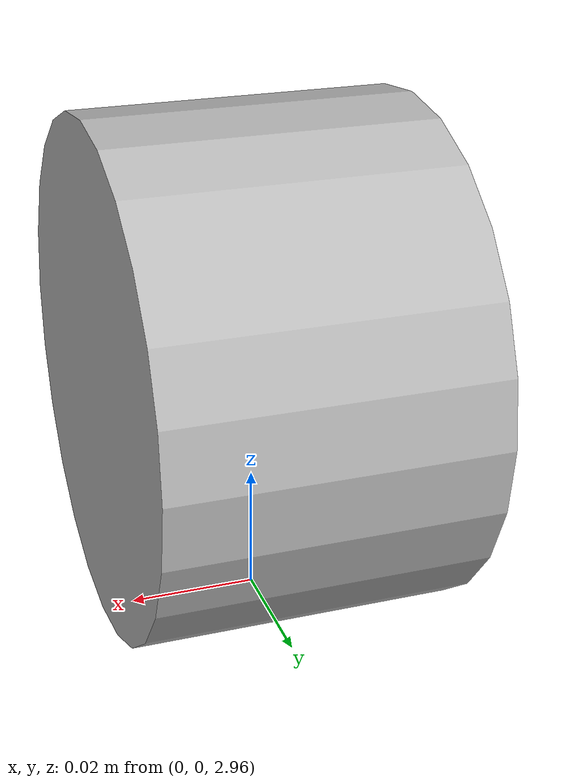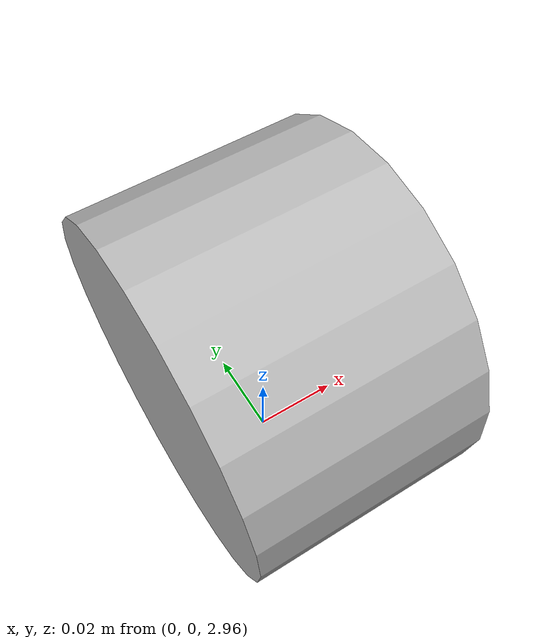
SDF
<?xml version="1.0" ?>
<sdf version="1.5">
  <world name="default">

    <!-- A global light source -->
    <include>
      <uri>model://sun</uri>
    </include>

    <!-- A ground plane -->
    <include>
      <uri>model://ground_plane</uri>
    </include>

    <include>
      <uri>model://realsense_d435</uri>
      <pose>0 0 3 0 1.57 0</pose>
      <static>true</static>
    </include>

  </world>
</sdf>

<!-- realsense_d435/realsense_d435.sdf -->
<sdf version="1.4">
  <model name="realsense_d435">
    <static>true</static>

    <link name="base">
      <!-- The visual is mostly a copy of the collision -->
      <visual name="base_visual">
        <geometry>
          <cylinder>
            <radius>.04</radius>
            <length>.05</length>
          </cylinder>
        </geometry>
      </visual>

      <sensor name="camera" type="depth">
        <update_rate>25</update_rate>
        <camera>
          <horizontal_fov>1.5</horizontal_fov>
          <image>
            <width>640</width>
            <height>480</height>
            <format>R8G8B8</format>
          </image>
          <clip>
            <near>0.2</near>
            <far>10</far>
          </clip>
          <noise>
            <type>gaussian</type>
            <!-- Noise is sampled independently per pixel on each frame.
                 That pixel's noise value is added to each of its color
                 channels, which at that point lie in the range [0,1]. -->
            <mean>0.0</mean>
            <stddev>0.007</stddev>
          </noise>
        </camera>
        <plugin name='realsense_rgb_link_controller' filename='libgazebo_ros_openni_kinect.so'>
          <alwaysOn>true</alwaysOn>
          <updateRate>25.0</updateRate>
          <cameraName>/realsense/rgb</cameraName>
          <imageTopicName>//realsense/rgb/image_raw</imageTopicName>
          <cameraInfoTopicName>//realsense/rgb/camera_info</cameraInfoTopicName>
          <depthImageTopicName>//realsense/depth/image_raw</depthImageTopicName>
          <depthImageCameraInfoTopicName>//realsense/depth/camera_info</depthImageCameraInfoTopicName>
          <pointCloudTopicName>//realsense/depth_registered/points</pointCloudTopicName>
          <frameName>realsense</frameName>
          <pointCloudCutoff>0.5</pointCloudCutoff>
          <distortionK1>0.00000001</distortionK1>
          <distortionK2>0.00000001</distortionK2>
          <distortionK3>0.00000001</distortionK3>
          <distortionT1>0.00000001</distortionT1>
          <distortionT2>0.00000001</distortionT2>
        </plugin>
      </sensor>

    </link>
  </model>
</sdf>
